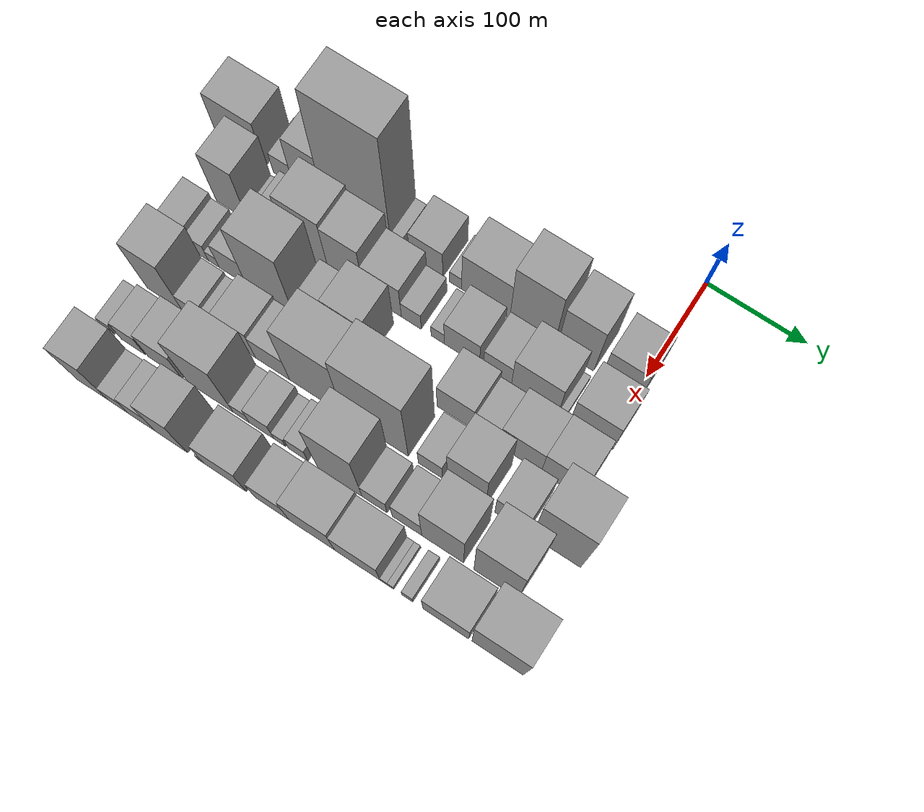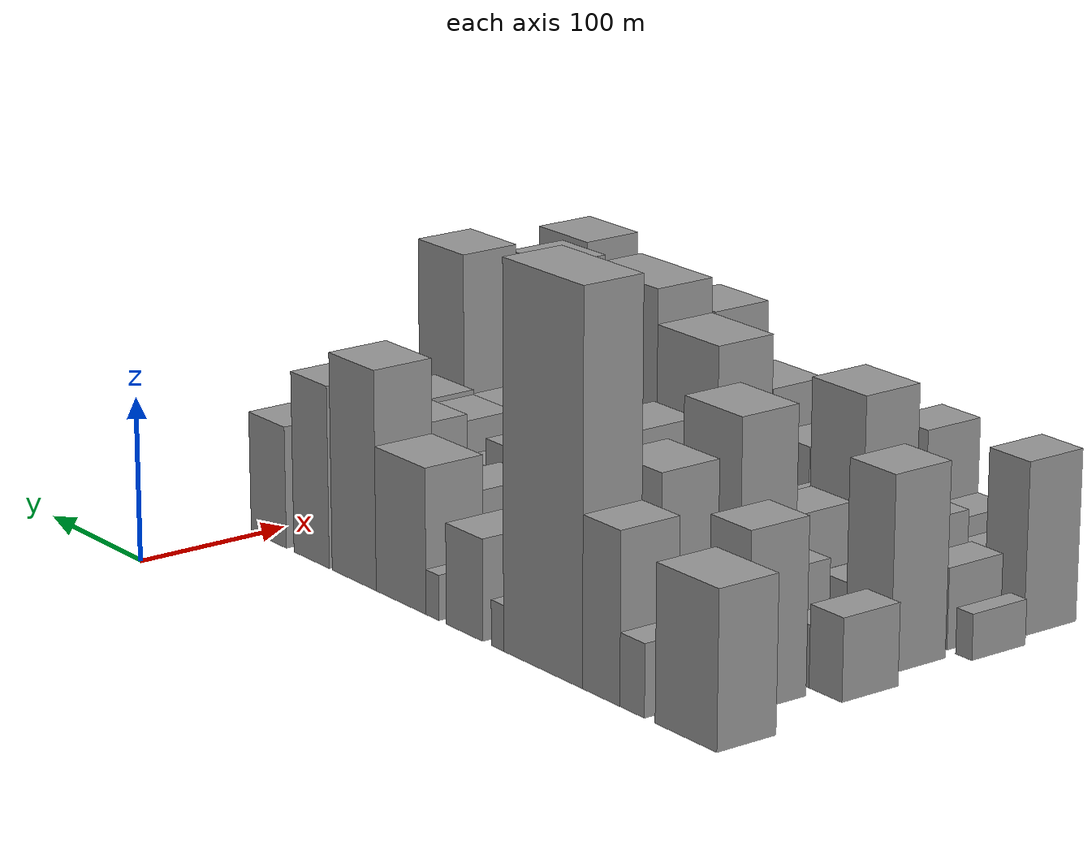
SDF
<sdf version="1.6">
 <world name="default">
  <model name="building_14">
   <static>1</static>
   <pose>100.0000 -406.3923 0 0.000000 0.000000 0.000000</pose>
   <link name="link">
    <pose>0 0 45.00 0 0 0</pose>
    <collision name="collision"><geometry><box><size>40.0000 51.0911 90.0000</size></box></geometry></collision>
    <visual name="visual">
     <cast_shadows>0</cast_shadows>
     <geometry><box><size>40.0000 51.0911 90.0000</size></box></geometry>
     <material>
      <script>
       <uri>model://grey_wall/materials/scripts</uri>
       <uri>model://grey_wall/materials/textures</uri>
       <name>vrc/grey_wall</name>
      </script>
     </material>
    </visual>
   </link>
  </model>
  <model name="building_15">
   <static>1</static>
   <pose>100.0000 -361.3320 0 0.000000 0.000000 0.000000</pose>
   <link name="link">
    <pose>0 0 21.00 0 0 0</pose>
    <collision name="collision"><geometry><box><size>40.0000 21.0296 42.0000</size></box></geometry></collision>
    <visual name="visual">
     <cast_shadows>0</cast_shadows>
     <geometry><box><size>40.0000 21.0296 42.0000</size></box></geometry>
     <material>
      <script>
       <uri>model://grey_wall/materials/scripts</uri>
       <uri>model://grey_wall/materials/textures</uri>
       <name>vrc/grey_wall</name>
      </script>
     </material>
    </visual>
   </link>
  </model>
  <model name="building_16">
   <static>1</static>
   <pose>100.0000 -334.5592 0 0.000000 0.000000 0.000000</pose>
   <link name="link">
    <pose>0 0 49.50 0 0 0</pose>
    <collision name="collision"><geometry><box><size>40.0000 32.5159 99.0000</size></box></geometry></collision>
    <visual name="visual">
     <cast_shadows>0</cast_shadows>
     <geometry><box><size>40.0000 32.5159 99.0000</size></box></geometry>
     <material>
      <script>
       <uri>model://grey_wall/materials/scripts</uri>
       <uri>model://grey_wall/materials/textures</uri>
       <name>vrc/grey_wall</name>
      </script>
     </material>
    </visual>
   </link>
  </model>
  <model name="building_17">
   <static>1</static>
   <pose>100.0000 -282.7788 0 0.000000 0.000000 0.000000</pose>
   <link name="link">
    <pose>0 0 112.50 0 0 0</pose>
    <collision name="collision"><geometry><box><size>40.0000 71.0450 225.0000</size></box></geometry></collision>
    <visual name="visual">
     <cast_shadows>0</cast_shadows>
     <geometry><box><size>40.0000 71.0450 225.0000</size></box></geometry>
     <material>
      <script>
       <uri>model://grey_wall/materials/scripts</uri>
       <uri>model://grey_wall/materials/textures</uri>
       <name>vrc/grey_wall</name>
      </script>
     </material>
    </visual>
   </link>
  </model>
  <model name="building_18">
   <static>1</static>
   <pose>100.0000 -241.5835 0 0.000000 0.000000 0.000000</pose>
   <link name="link">
    <pose>0 0 13.50 0 0 0</pose>
    <collision name="collision"><geometry><box><size>40.0000 11.3455 27.0000</size></box></geometry></collision>
    <visual name="visual">
     <cast_shadows>0</cast_shadows>
     <geometry><box><size>40.0000 11.3455 27.0000</size></box></geometry>
     <material>
      <script>
       <uri>model://grey_wall/materials/scripts</uri>
       <uri>model://grey_wall/materials/textures</uri>
       <name>vrc/grey_wall</name>
      </script>
     </material>
    </visual>
   </link>
  </model>
  <model name="building_19">
   <static>1</static>
   <pose>100.0000 -210.6910 0 0.000000 0.000000 0.000000</pose>
   <link name="link">
    <pose>0 0 30.00 0 0 0</pose>
    <collision name="collision"><geometry><box><size>40.0000 34.4396 60.0000</size></box></geometry></collision>
    <visual name="visual">
     <cast_shadows>0</cast_shadows>
     <geometry><box><size>40.0000 34.4396 60.0000</size></box></geometry>
     <material>
      <script>
       <uri>model://grey_wall/materials/scripts</uri>
       <uri>model://grey_wall/materials/textures</uri>
       <name>vrc/grey_wall</name>
      </script>
     </material>
    </visual>
   </link>
  </model>
  <model name="building_20">
   <static>1</static>
   <pose>100.0000 -180.2853 0 0.000000 0.000000 0.000000</pose>
   <link name="link">
    <pose>0 0 13.50 0 0 0</pose>
    <collision name="collision"><geometry><box><size>40.0000 12.3718 27.0000</size></box></geometry></collision>
    <visual name="visual">
     <cast_shadows>0</cast_shadows>
     <geometry><box><size>40.0000 12.3718 27.0000</size></box></geometry>
     <material>
      <script>
       <uri>model://grey_wall/materials/scripts</uri>
       <uri>model://grey_wall/materials/textures</uri>
       <name>vrc/grey_wall</name>
      </script>
     </material>
    </visual>
   </link>
  </model>
  <model name="building_21">
   <static>1</static>
   <pose>100.0000 -149.5675 0 0.000000 0.000000 0.000000</pose>
   <link name="link">
    <pose>0 0 43.50 0 0 0</pose>
    <collision name="collision"><geometry><box><size>40.0000 49.0637 87.0000</size></box></geometry></collision>
    <visual name="visual">
     <cast_shadows>0</cast_shadows>
     <geometry><box><size>40.0000 49.0637 87.0000</size></box></geometry>
     <material>
      <script>
       <uri>model://grey_wall/materials/scripts</uri>
       <uri>model://grey_wall/materials/textures</uri>
       <name>vrc/grey_wall</name>
      </script>
     </material>
    </visual>
   </link>
  </model>
  <model name="building_22">
   <static>1</static>
   <pose>100.0000 -102.7013 0 0.000000 0.000000 0.000000</pose>
   <link name="link">
    <pose>0 0 66.00 0 0 0</pose>
    <collision name="collision"><geometry><box><size>40.0000 44.6686 132.0000</size></box></geometry></collision>
    <visual name="visual">
     <cast_shadows>0</cast_shadows>
     <geometry><box><size>40.0000 44.6686 132.0000</size></box></geometry>
     <material>
      <script>
       <uri>model://grey_wall/materials/scripts</uri>
       <uri>model://grey_wall/materials/textures</uri>
       <name>vrc/grey_wall</name>
      </script>
     </material>
    </visual>
   </link>
  </model>
  <model name="building_23">
   <static>1</static>
   <pose>100.0000 -58.9814 0 0.000000 0.000000 0.000000</pose>
   <link name="link">
    <pose>0 0 55.50 0 0 0</pose>
    <collision name="collision"><geometry><box><size>40.0000 36.7712 111.0000</size></box></geometry></collision>
    <visual name="visual">
     <cast_shadows>0</cast_shadows>
     <geometry><box><size>40.0000 36.7712 111.0000</size></box></geometry>
     <material>
      <script>
       <uri>model://grey_wall/materials/scripts</uri>
       <uri>model://grey_wall/materials/textures</uri>
       <name>vrc/grey_wall</name>
      </script>
     </material>
    </visual>
   </link>
  </model>
  <model name="building_24">
   <static>1</static>
   <pose>100.0000 -13.7716 0 0.000000 0.000000 0.000000</pose>
   <link name="link">
    <pose>0 0 37.50 0 0 0</pose>
    <collision name="collision"><geometry><box><size>40.0000 37.6485 75.0000</size></box></geometry></collision>
    <visual name="visual">
     <cast_shadows>0</cast_shadows>
     <geometry><box><size>40.0000 37.6485 75.0000</size></box></geometry>
     <material>
      <script>
       <uri>model://grey_wall/materials/scripts</uri>
       <uri>model://grey_wall/materials/textures</uri>
       <name>vrc/grey_wall</name>
      </script>
     </material>
    </visual>
   </link>
  </model>
  <model name="building_57">
   <static>1</static>
   <pose>149.0000 -382.1029 0 0.000000 0.000000 0.000000</pose>
   <link name="link">
    <pose>0 0 51.00 0 0 0</pose>
    <collision name="collision"><geometry><box><size>40.0000 33.3554 102.0000</size></box></geometry></collision>
    <visual name="visual">
     <cast_shadows>0</cast_shadows>
     <geometry><box><size>40.0000 33.3554 102.0000</size></box></geometry>
     <material>
      <script>
       <uri>model://grey_wall/materials/scripts</uri>
       <uri>model://grey_wall/materials/textures</uri>
       <name>vrc/grey_wall</name>
      </script>
     </material>
    </visual>
   </link>
  </model>
  <model name="building_58">
   <static>1</static>
   <pose>149.0000 -360.3047 0 0.000000 0.000000 0.000000</pose>
   <link name="link">
    <pose>0 0 10.50 0 0 0</pose>
    <collision name="collision"><geometry><box><size>40.0000 10.2410 21.0000</size></box></geometry></collision>
    <visual name="visual">
     <cast_shadows>0</cast_shadows>
     <geometry><box><size>40.0000 10.2410 21.0000</size></box></geometry>
     <material>
      <script>
       <uri>model://grey_wall/materials/scripts</uri>
       <uri>model://grey_wall/materials/textures</uri>
       <name>vrc/grey_wall</name>
      </script>
     </material>
    </visual>
   </link>
  </model>
  <model name="building_59">
   <static>1</static>
   <pose>149.0000 -339.5528 0 0.000000 0.000000 0.000000</pose>
   <link name="link">
    <pose>0 0 24.00 0 0 0</pose>
    <collision name="collision"><geometry><box><size>40.0000 25.2629 48.0000</size></box></geometry></collision>
    <visual name="visual">
     <cast_shadows>0</cast_shadows>
     <geometry><box><size>40.0000 25.2629 48.0000</size></box></geometry>
     <material>
      <script>
       <uri>model://grey_wall/materials/scripts</uri>
       <uri>model://grey_wall/materials/textures</uri>
       <name>vrc/grey_wall</name>
      </script>
     </material>
    </visual>
   </link>
  </model>
  <model name="building_60">
   <static>1</static>
   <pose>149.0000 -301.4753 0 0.000000 0.000000 0.000000</pose>
   <link name="link">
    <pose>0 0 57.00 0 0 0</pose>
    <collision name="collision"><geometry><box><size>40.0000 44.8920 114.0000</size></box></geometry></collision>
    <visual name="visual">
     <cast_shadows>0</cast_shadows>
     <geometry><box><size>40.0000 44.8920 114.0000</size></box></geometry>
     <material>
      <script>
       <uri>model://grey_wall/materials/scripts</uri>
       <uri>model://grey_wall/materials/textures</uri>
       <name>vrc/grey_wall</name>
      </script>
     </material>
    </visual>
   </link>
  </model>
  <model name="building_61">
   <static>1</static>
   <pose>149.0000 -260.5300 0 0.000000 0.000000 0.000000</pose>
   <link name="link">
    <pose>0 0 52.50 0 0 0</pose>
    <collision name="collision"><geometry><box><size>40.0000 36.9986 105.0000</size></box></geometry></collision>
    <visual name="visual">
     <cast_shadows>0</cast_shadows>
     <geometry><box><size>40.0000 36.9986 105.0000</size></box></geometry>
     <material>
      <script>
       <uri>model://grey_wall/materials/scripts</uri>
       <uri>model://grey_wall/materials/textures</uri>
       <name>vrc/grey_wall</name>
      </script>
     </material>
    </visual>
   </link>
  </model>
  <model name="building_62">
   <static>1</static>
   <pose>149.0000 -222.8986 0 0.000000 0.000000 0.000000</pose>
   <link name="link">
    <pose>0 0 36.00 0 0 0</pose>
    <collision name="collision"><geometry><box><size>40.0000 38.2643 72.0000</size></box></geometry></collision>
    <visual name="visual">
     <cast_shadows>0</cast_shadows>
     <geometry><box><size>40.0000 38.2643 72.0000</size></box></geometry>
     <material>
      <script>
       <uri>model://grey_wall/materials/scripts</uri>
       <uri>model://grey_wall/materials/textures</uri>
       <name>vrc/grey_wall</name>
      </script>
     </material>
    </visual>
   </link>
  </model>
  <model name="building_63">
   <static>1</static>
   <pose>149.0000 -193.5696 0 0.000000 0.000000 0.000000</pose>
   <link name="link">
    <pose>0 0 19.50 0 0 0</pose>
    <collision name="collision"><geometry><box><size>40.0000 20.3938 39.0000</size></box></geometry></collision>
    <visual name="visual">
     <cast_shadows>0</cast_shadows>
     <geometry><box><size>40.0000 20.3938 39.0000</size></box></geometry>
     <material>
      <script>
       <uri>model://grey_wall/materials/scripts</uri>
       <uri>model://grey_wall/materials/textures</uri>
       <name>vrc/grey_wall</name>
      </script>
     </material>
    </visual>
   </link>
  </model>
  <model name="building_64">
   <static>1</static>
   <pose>149.0000 -166.6785 0 0.000000 0.000000 0.000000</pose>
   <link name="link">
    <pose>0 0 13.50 0 0 0</pose>
    <collision name="collision"><geometry><box><size>40.0000 13.3885 27.0000</size></box></geometry></collision>
    <visual name="visual">
     <cast_shadows>0</cast_shadows>
     <geometry><box><size>40.0000 13.3885 27.0000</size></box></geometry>
     <material>
      <script>
       <uri>model://grey_wall/materials/scripts</uri>
       <uri>model://grey_wall/materials/textures</uri>
       <name>vrc/grey_wall</name>
      </script>
     </material>
    </visual>
   </link>
  </model>
  <model name="building_65">
   <static>1</static>
   <pose>149.0000 -142.2231 0 0.000000 0.000000 0.000000</pose>
   <link name="link">
    <pose>0 0 30.00 0 0 0</pose>
    <collision name="collision"><geometry><box><size>40.0000 35.5222 60.0000</size></box></geometry></collision>
    <visual name="visual">
     <cast_shadows>0</cast_shadows>
     <geometry><box><size>40.0000 35.5222 60.0000</size></box></geometry>
     <material>
      <script>
       <uri>model://grey_wall/materials/scripts</uri>
       <uri>model://grey_wall/materials/textures</uri>
       <name>vrc/grey_wall</name>
      </script>
     </material>
    </visual>
   </link>
  </model>
  <model name="building_66">
   <static>1</static>
   <pose>149.0000 -106.3887 0 0.000000 0.000000 0.000000</pose>
   <link name="link">
    <pose>0 0 27.00 0 0 0</pose>
    <collision name="collision"><geometry><box><size>40.0000 28.1467 54.0000</size></box></geometry></collision>
    <visual name="visual">
     <cast_shadows>0</cast_shadows>
     <geometry><box><size>40.0000 28.1467 54.0000</size></box></geometry>
     <material>
      <script>
       <uri>model://grey_wall/materials/scripts</uri>
       <uri>model://grey_wall/materials/textures</uri>
       <name>vrc/grey_wall</name>
      </script>
     </material>
    </visual>
   </link>
  </model>
  <model name="building_67">
   <static>1</static>
   <pose>149.0000 -69.0412 0 0.000000 0.000000 0.000000</pose>
   <link name="link">
    <pose>0 0 40.50 0 0 0</pose>
    <collision name="collision"><geometry><box><size>40.0000 46.5482 81.0000</size></box></geometry></collision>
    <visual name="visual">
     <cast_shadows>0</cast_shadows>
     <geometry><box><size>40.0000 46.5482 81.0000</size></box></geometry>
     <material>
      <script>
       <uri>model://grey_wall/materials/scripts</uri>
       <uri>model://grey_wall/materials/textures</uri>
       <name>vrc/grey_wall</name>
      </script>
     </material>
    </visual>
   </link>
  </model>
  <model name="building_68">
   <static>1</static>
   <pose>149.0000 -42.4234 0 0.000000 0.000000 0.000000</pose>
   <link name="link">
    <pose>0 0 7.50 0 0 0</pose>
    <collision name="collision"><geometry><box><size>40.0000 6.6874 15.0000</size></box></geometry></collision>
    <visual name="visual">
     <cast_shadows>0</cast_shadows>
     <geometry><box><size>40.0000 6.6874 15.0000</size></box></geometry>
     <material>
      <script>
       <uri>model://grey_wall/materials/scripts</uri>
       <uri>model://grey_wall/materials/textures</uri>
       <name>vrc/grey_wall</name>
      </script>
     </material>
    </visual>
   </link>
  </model>
  <model name="building_69">
   <static>1</static>
   <pose>149.0000 -12.8317 0 0.000000 0.000000 0.000000</pose>
   <link name="link">
    <pose>0 0 37.50 0 0 0</pose>
    <collision name="collision"><geometry><box><size>40.0000 42.4959 75.0000</size></box></geometry></collision>
    <visual name="visual">
     <cast_shadows>0</cast_shadows>
     <geometry><box><size>40.0000 42.4959 75.0000</size></box></geometry>
     <material>
      <script>
       <uri>model://grey_wall/materials/scripts</uri>
       <uri>model://grey_wall/materials/textures</uri>
       <name>vrc/grey_wall</name>
      </script>
     </material>
    </visual>
   </link>
  </model>
  <model name="building_108">
   <static>1</static>
   <pose>198.0000 -404.2111 0 0.000000 0.000000 0.000000</pose>
   <link name="link">
    <pose>0 0 24.00 0 0 0</pose>
    <collision name="collision"><geometry><box><size>40.0000 26.8982 48.0000</size></box></geometry></collision>
    <visual name="visual">
     <cast_shadows>0</cast_shadows>
     <geometry><box><size>40.0000 26.8982 48.0000</size></box></geometry>
     <material>
      <script>
       <uri>model://grey_wall/materials/scripts</uri>
       <uri>model://grey_wall/materials/textures</uri>
       <name>vrc/grey_wall</name>
      </script>
     </material>
    </visual>
   </link>
  </model>
  <model name="building_109">
   <static>1</static>
   <pose>198.0000 -381.4071 0 0.000000 0.000000 0.000000</pose>
   <link name="link">
    <pose>0 0 18.00 0 0 0</pose>
    <collision name="collision"><geometry><box><size>40.0000 18.7098 36.0000</size></box></geometry></collision>
    <visual name="visual">
     <cast_shadows>0</cast_shadows>
     <geometry><box><size>40.0000 18.7098 36.0000</size></box></geometry>
     <material>
      <script>
       <uri>model://grey_wall/materials/scripts</uri>
       <uri>model://grey_wall/materials/textures</uri>
       <name>vrc/grey_wall</name>
      </script>
     </material>
    </visual>
   </link>
  </model>
  <model name="building_110">
   <static>1</static>
   <pose>198.0000 -366.3024 0 0.000000 0.000000 0.000000</pose>
   <link name="link">
    <pose>0 0 12.00 0 0 0</pose>
    <collision name="collision"><geometry><box><size>40.0000 11.4996 24.0000</size></box></geometry></collision>
    <visual name="visual">
     <cast_shadows>0</cast_shadows>
     <geometry><box><size>40.0000 11.4996 24.0000</size></box></geometry>
     <material>
      <script>
       <uri>model://grey_wall/materials/scripts</uri>
       <uri>model://grey_wall/materials/textures</uri>
       <name>vrc/grey_wall</name>
      </script>
     </material>
    </visual>
   </link>
  </model>
  <model name="building_111">
   <static>1</static>
   <pose>198.0000 -346.1902 0 0.000000 0.000000 0.000000</pose>
   <link name="link">
    <pose>0 0 28.50 0 0 0</pose>
    <collision name="collision"><geometry><box><size>40.0000 28.7248 57.0000</size></box></geometry></collision>
    <visual name="visual">
     <cast_shadows>0</cast_shadows>
     <geometry><box><size>40.0000 28.7248 57.0000</size></box></geometry>
     <material>
      <script>
       <uri>model://grey_wall/materials/scripts</uri>
       <uri>model://grey_wall/materials/textures</uri>
       <name>vrc/grey_wall</name>
      </script>
     </material>
    </visual>
   </link>
  </model>
  <model name="building_112">
   <static>1</static>
   <pose>198.0000 -306.9564 0 0.000000 0.000000 0.000000</pose>
   <link name="link">
    <pose>0 0 69.00 0 0 0</pose>
    <collision name="collision"><geometry><box><size>40.0000 49.7427 138.0000</size></box></geometry></collision>
    <visual name="visual">
     <cast_shadows>0</cast_shadows>
     <geometry><box><size>40.0000 49.7427 138.0000</size></box></geometry>
     <material>
      <script>
       <uri>model://grey_wall/materials/scripts</uri>
       <uri>model://grey_wall/materials/textures</uri>
       <name>vrc/grey_wall</name>
      </script>
     </material>
    </visual>
   </link>
  </model>
  <model name="building_113">
   <static>1</static>
   <pose>198.0000 -278.9943 0 0.000000 0.000000 0.000000</pose>
   <link name="link">
    <pose>0 0 7.50 0 0 0</pose>
    <collision name="collision"><geometry><box><size>40.0000 6.1815 15.0000</size></box></geometry></collision>
    <visual name="visual">
     <cast_shadows>0</cast_shadows>
     <geometry><box><size>40.0000 6.1815 15.0000</size></box></geometry>
     <material>
      <script>
       <uri>model://grey_wall/materials/scripts</uri>
       <uri>model://grey_wall/materials/textures</uri>
       <name>vrc/grey_wall</name>
      </script>
     </material>
    </visual>
   </link>
  </model>
  <model name="building_114">
   <static>1</static>
   <pose>198.0000 -260.1103 0 0.000000 0.000000 0.000000</pose>
   <link name="link">
    <pose>0 0 30.00 0 0 0</pose>
    <collision name="collision"><geometry><box><size>40.0000 31.5867 60.0000</size></box></geometry></collision>
    <visual name="visual">
     <cast_shadows>0</cast_shadows>
     <geometry><box><size>40.0000 31.5867 60.0000</size></box></geometry>
     <material>
      <script>
       <uri>model://grey_wall/materials/scripts</uri>
       <uri>model://grey_wall/materials/textures</uri>
       <name>vrc/grey_wall</name>
      </script>
     </material>
    </visual>
   </link>
  </model>
  <model name="building_115">
   <static>1</static>
   <pose>198.0000 -225.0217 0 0.000000 0.000000 0.000000</pose>
   <link name="link">
    <pose>0 0 54.00 0 0 0</pose>
    <collision name="collision"><geometry><box><size>40.0000 38.5906 108.0000</size></box></geometry></collision>
    <visual name="visual">
     <cast_shadows>0</cast_shadows>
     <geometry><box><size>40.0000 38.5906 108.0000</size></box></geometry>
     <material>
      <script>
       <uri>model://grey_wall/materials/scripts</uri>
       <uri>model://grey_wall/materials/textures</uri>
       <name>vrc/grey_wall</name>
      </script>
     </material>
    </visual>
   </link>
  </model>
  <model name="building_116">
   <static>1</static>
   <pose>198.0000 -116.7521 0 0.000000 0.000000 0.000000</pose>
   <link name="link">
    <pose>0 0 33.00 0 0 0</pose>
    <collision name="collision"><geometry><box><size>40.0000 36.6496 66.0000</size></box></geometry></collision>
    <visual name="visual">
     <cast_shadows>0</cast_shadows>
     <geometry><box><size>40.0000 36.6496 66.0000</size></box></geometry>
     <material>
      <script>
       <uri>model://grey_wall/materials/scripts</uri>
       <uri>model://grey_wall/materials/textures</uri>
       <name>vrc/grey_wall</name>
      </script>
     </material>
    </visual>
   </link>
  </model>
  <model name="building_117">
   <static>1</static>
   <pose>198.0000 -85.3803 0 0.000000 0.000000 0.000000</pose>
   <link name="link">
    <pose>0 0 24.00 0 0 0</pose>
    <collision name="collision"><geometry><box><size>40.0000 26.0939 48.0000</size></box></geometry></collision>
    <visual name="visual">
     <cast_shadows>0</cast_shadows>
     <geometry><box><size>40.0000 26.0939 48.0000</size></box></geometry>
     <material>
      <script>
       <uri>model://grey_wall/materials/scripts</uri>
       <uri>model://grey_wall/materials/textures</uri>
       <name>vrc/grey_wall</name>
      </script>
     </material>
    </visual>
   </link>
  </model>
  <model name="building_118">
   <static>1</static>
   <pose>198.0000 -51.9187 0 0.000000 0.000000 0.000000</pose>
   <link name="link">
    <pose>0 0 34.50 0 0 0</pose>
    <collision name="collision"><geometry><box><size>40.0000 40.8294 69.0000</size></box></geometry></collision>
    <visual name="visual">
     <cast_shadows>0</cast_shadows>
     <geometry><box><size>40.0000 40.8294 69.0000</size></box></geometry>
     <material>
      <script>
       <uri>model://grey_wall/materials/scripts</uri>
       <uri>model://grey_wall/materials/textures</uri>
       <name>vrc/grey_wall</name>
      </script>
     </material>
    </visual>
   </link>
  </model>
  <model name="building_119">
   <static>1</static>
   <pose>198.0000 -11.8491 0 0.000000 0.000000 0.000000</pose>
   <link name="link">
    <pose>0 0 36.00 0 0 0</pose>
    <collision name="collision"><geometry><box><size>40.0000 39.3098 72.0000</size></box></geometry></collision>
    <visual name="visual">
     <cast_shadows>0</cast_shadows>
     <geometry><box><size>40.0000 39.3098 72.0000</size></box></geometry>
     <material>
      <script>
       <uri>model://grey_wall/materials/scripts</uri>
       <uri>model://grey_wall/materials/textures</uri>
       <name>vrc/grey_wall</name>
      </script>
     </material>
    </visual>
   </link>
  </model>
  <model name="building_161">
   <static>1</static>
   <pose>247.0000 -382.9924 0 0.000000 0.000000 0.000000</pose>
   <link name="link">
    <pose>0 0 57.00 0 0 0</pose>
    <collision name="collision"><geometry><box><size>40.0000 37.2555 114.0000</size></box></geometry></collision>
    <visual name="visual">
     <cast_shadows>0</cast_shadows>
     <geometry><box><size>40.0000 37.2555 114.0000</size></box></geometry>
     <material>
      <script>
       <uri>model://grey_wall/materials/scripts</uri>
       <uri>model://grey_wall/materials/textures</uri>
       <name>vrc/grey_wall</name>
      </script>
     </material>
    </visual>
   </link>
  </model>
  <model name="building_162">
   <static>1</static>
   <pose>247.0000 -352.8262 0 0.000000 0.000000 0.000000</pose>
   <link name="link">
    <pose>0 0 21.00 0 0 0</pose>
    <collision name="collision"><geometry><box><size>40.0000 23.0768 42.0000</size></box></geometry></collision>
    <visual name="visual">
     <cast_shadows>0</cast_shadows>
     <geometry><box><size>40.0000 23.0768 42.0000</size></box></geometry>
     <material>
      <script>
       <uri>model://grey_wall/materials/scripts</uri>
       <uri>model://grey_wall/materials/textures</uri>
       <name>vrc/grey_wall</name>
      </script>
     </material>
    </visual>
   </link>
  </model>
  <model name="building_163">
   <static>1</static>
   <pose>247.0000 -331.6278 0 0.000000 0.000000 0.000000</pose>
   <link name="link">
    <pose>0 0 16.50 0 0 0</pose>
    <collision name="collision"><geometry><box><size>40.0000 19.3199 33.0000</size></box></geometry></collision>
    <visual name="visual">
     <cast_shadows>0</cast_shadows>
     <geometry><box><size>40.0000 19.3199 33.0000</size></box></geometry>
     <material>
      <script>
       <uri>model://grey_wall/materials/scripts</uri>
       <uri>model://grey_wall/materials/textures</uri>
       <name>vrc/grey_wall</name>
      </script>
     </material>
    </visual>
   </link>
  </model>
  <model name="building_164">
   <static>1</static>
   <pose>247.0000 -304.6740 0 0.000000 0.000000 0.000000</pose>
   <link name="link">
    <pose>0 0 34.50 0 0 0</pose>
    <collision name="collision"><geometry><box><size>40.0000 34.5878 69.0000</size></box></geometry></collision>
    <visual name="visual">
     <cast_shadows>0</cast_shadows>
     <geometry><box><size>40.0000 34.5878 69.0000</size></box></geometry>
     <material>
      <script>
       <uri>model://grey_wall/materials/scripts</uri>
       <uri>model://grey_wall/materials/textures</uri>
       <name>vrc/grey_wall</name>
      </script>
     </material>
    </visual>
   </link>
  </model>
  <model name="building_165">
   <static>1</static>
   <pose>247.0000 -269.6949 0 0.000000 0.000000 0.000000</pose>
   <link name="link">
    <pose>0 0 30.00 0 0 0</pose>
    <collision name="collision"><geometry><box><size>40.0000 35.3703 60.0000</size></box></geometry></collision>
    <visual name="visual">
     <cast_shadows>0</cast_shadows>
     <geometry><box><size>40.0000 35.3703 60.0000</size></box></geometry>
     <material>
      <script>
       <uri>model://grey_wall/materials/scripts</uri>
       <uri>model://grey_wall/materials/textures</uri>
       <name>vrc/grey_wall</name>
      </script>
     </material>
    </visual>
   </link>
  </model>
  <model name="building_166">
   <static>1</static>
   <pose>247.0000 -224.6699 0 0.000000 0.000000 0.000000</pose>
   <link name="link">
    <pose>0 0 75.00 0 0 0</pose>
    <collision name="collision"><geometry><box><size>40.0000 54.6799 150.0000</size></box></geometry></collision>
    <visual name="visual">
     <cast_shadows>0</cast_shadows>
     <geometry><box><size>40.0000 54.6799 150.0000</size></box></geometry>
     <material>
      <script>
       <uri>model://grey_wall/materials/scripts</uri>
       <uri>model://grey_wall/materials/textures</uri>
       <name>vrc/grey_wall</name>
      </script>
     </material>
    </visual>
   </link>
  </model>
  <model name="building_167">
   <static>1</static>
   <pose>247.0000 -164.4847 0 0.000000 0.000000 0.000000</pose>
   <link name="link">
    <pose>0 0 85.50 0 0 0</pose>
    <collision name="collision"><geometry><box><size>40.0000 65.6905 171.0000</size></box></geometry></collision>
    <visual name="visual">
     <cast_shadows>0</cast_shadows>
     <geometry><box><size>40.0000 65.6905 171.0000</size></box></geometry>
     <material>
      <script>
       <uri>model://grey_wall/materials/scripts</uri>
       <uri>model://grey_wall/materials/textures</uri>
       <name>vrc/grey_wall</name>
      </script>
     </material>
    </visual>
   </link>
  </model>
  <model name="building_168">
   <static>1</static>
   <pose>247.0000 -109.7556 0 0.000000 0.000000 0.000000</pose>
   <link name="link">
    <pose>0 0 22.50 0 0 0</pose>
    <collision name="collision"><geometry><box><size>40.0000 23.7678 45.0000</size></box></geometry></collision>
    <visual name="visual">
     <cast_shadows>0</cast_shadows>
     <geometry><box><size>40.0000 23.7678 45.0000</size></box></geometry>
     <material>
      <script>
       <uri>model://grey_wall/materials/scripts</uri>
       <uri>model://grey_wall/materials/textures</uri>
       <name>vrc/grey_wall</name>
      </script>
     </material>
    </visual>
   </link>
  </model>
  <model name="building_169">
   <static>1</static>
   <pose>247.0000 -73.9594 0 0.000000 0.000000 0.000000</pose>
   <link name="link">
    <pose>0 0 55.50 0 0 0</pose>
    <collision name="collision"><geometry><box><size>40.0000 37.8246 111.0000</size></box></geometry></collision>
    <visual name="visual">
     <cast_shadows>0</cast_shadows>
     <geometry><box><size>40.0000 37.8246 111.0000</size></box></geometry>
     <material>
      <script>
       <uri>model://grey_wall/materials/scripts</uri>
       <uri>model://grey_wall/materials/textures</uri>
       <name>vrc/grey_wall</name>
      </script>
     </material>
    </visual>
   </link>
  </model>
  <model name="building_170">
   <static>1</static>
   <pose>247.0000 -30.2576 0 0.000000 0.000000 0.000000</pose>
   <link name="link">
    <pose>0 0 31.50 0 0 0</pose>
    <collision name="collision"><geometry><box><size>40.0000 31.5790 63.0000</size></box></geometry></collision>
    <visual name="visual">
     <cast_shadows>0</cast_shadows>
     <geometry><box><size>40.0000 31.5790 63.0000</size></box></geometry>
     <material>
      <script>
       <uri>model://grey_wall/materials/scripts</uri>
       <uri>model://grey_wall/materials/textures</uri>
       <name>vrc/grey_wall</name>
      </script>
     </material>
    </visual>
   </link>
  </model>
  <model name="building_171">
   <static>1</static>
   <pose>247.0000 13.9634 0 0.000000 0.000000 0.000000</pose>
   <link name="link">
    <pose>0 0 75.00 0 0 0</pose>
    <collision name="collision"><geometry><box><size>40.0000 46.8631 150.0000</size></box></geometry></collision>
    <visual name="visual">
     <cast_shadows>0</cast_shadows>
     <geometry><box><size>40.0000 46.8631 150.0000</size></box></geometry>
     <material>
      <script>
       <uri>model://grey_wall/materials/scripts</uri>
       <uri>model://grey_wall/materials/textures</uri>
       <name>vrc/grey_wall</name>
      </script>
     </material>
    </visual>
   </link>
  </model>
  <model name="building_208">
   <static>1</static>
   <pose>296.0000 -406.7117 0 0.000000 0.000000 0.000000</pose>
   <link name="link">
    <pose>0 0 13.50 0 0 0</pose>
    <collision name="collision"><geometry><box><size>40.0000 13.0756 27.0000</size></box></geometry></collision>
    <visual name="visual">
     <cast_shadows>0</cast_shadows>
     <geometry><box><size>40.0000 13.0756 27.0000</size></box></geometry>
     <material>
      <script>
       <uri>model://grey_wall/materials/scripts</uri>
       <uri>model://grey_wall/materials/textures</uri>
       <name>vrc/grey_wall</name>
      </script>
     </material>
    </visual>
   </link>
  </model>
  <model name="building_209">
   <static>1</static>
   <pose>296.0000 -380.4439 0 0.000000 0.000000 0.000000</pose>
   <link name="link">
    <pose>0 0 24.00 0 0 0</pose>
    <collision name="collision"><geometry><box><size>40.0000 25.4599 48.0000</size></box></geometry></collision>
    <visual name="visual">
     <cast_shadows>0</cast_shadows>
     <geometry><box><size>40.0000 25.4599 48.0000</size></box></geometry>
     <material>
      <script>
       <uri>model://grey_wall/materials/scripts</uri>
       <uri>model://grey_wall/materials/textures</uri>
       <name>vrc/grey_wall</name>
      </script>
     </material>
    </visual>
   </link>
  </model>
  <model name="building_210">
   <static>1</static>
   <pose>296.0000 -346.7444 0 0.000000 0.000000 0.000000</pose>
   <link name="link">
    <pose>0 0 33.00 0 0 0</pose>
    <collision name="collision"><geometry><box><size>40.0000 35.9390 66.0000</size></box></geometry></collision>
    <visual name="visual">
     <cast_shadows>0</cast_shadows>
     <geometry><box><size>40.0000 35.9390 66.0000</size></box></geometry>
     <material>
      <script>
       <uri>model://grey_wall/materials/scripts</uri>
       <uri>model://grey_wall/materials/textures</uri>
       <name>vrc/grey_wall</name>
      </script>
     </material>
    </visual>
   </link>
  </model>
  <model name="building_211">
   <static>1</static>
   <pose>296.0000 -298.7966 0 0.000000 0.000000 0.000000</pose>
   <link name="link">
    <pose>0 0 64.50 0 0 0</pose>
    <collision name="collision"><geometry><box><size>40.0000 45.9568 129.0000</size></box></geometry></collision>
    <visual name="visual">
     <cast_shadows>0</cast_shadows>
     <geometry><box><size>40.0000 45.9568 129.0000</size></box></geometry>
     <material>
      <script>
       <uri>model://grey_wall/materials/scripts</uri>
       <uri>model://grey_wall/materials/textures</uri>
       <name>vrc/grey_wall</name>
      </script>
     </material>
    </visual>
   </link>
  </model>
  <model name="building_212">
   <static>1</static>
   <pose>296.0000 -267.4237 0 0.000000 0.000000 0.000000</pose>
   <link name="link">
    <pose>0 0 15.00 0 0 0</pose>
    <collision name="collision"><geometry><box><size>40.0000 16.7889 30.0000</size></box></geometry></collision>
    <visual name="visual">
     <cast_shadows>0</cast_shadows>
     <geometry><box><size>40.0000 16.7889 30.0000</size></box></geometry>
     <material>
      <script>
       <uri>model://grey_wall/materials/scripts</uri>
       <uri>model://grey_wall/materials/textures</uri>
       <name>vrc/grey_wall</name>
      </script>
     </material>
    </visual>
   </link>
  </model>
  <model name="building_213">
   <static>1</static>
   <pose>296.0000 -246.5369 0 0.000000 0.000000 0.000000</pose>
   <link name="link">
    <pose>0 0 24.00 0 0 0</pose>
    <collision name="collision"><geometry><box><size>40.0000 24.9847 48.0000</size></box></geometry></collision>
    <visual name="visual">
     <cast_shadows>0</cast_shadows>
     <geometry><box><size>40.0000 24.9847 48.0000</size></box></geometry>
     <material>
      <script>
       <uri>model://grey_wall/materials/scripts</uri>
       <uri>model://grey_wall/materials/textures</uri>
       <name>vrc/grey_wall</name>
      </script>
     </material>
    </visual>
   </link>
  </model>
  <model name="building_214">
   <static>1</static>
   <pose>296.0000 -228.1272 0 0.000000 0.000000 0.000000</pose>
   <link name="link">
    <pose>0 0 12.00 0 0 0</pose>
    <collision name="collision"><geometry><box><size>40.0000 11.8349 24.0000</size></box></geometry></collision>
    <visual name="visual">
     <cast_shadows>0</cast_shadows>
     <geometry><box><size>40.0000 11.8349 24.0000</size></box></geometry>
     <material>
      <script>
       <uri>model://grey_wall/materials/scripts</uri>
       <uri>model://grey_wall/materials/textures</uri>
       <name>vrc/grey_wall</name>
      </script>
     </material>
    </visual>
   </link>
  </model>
  <model name="building_215">
   <static>1</static>
   <pose>296.0000 -209.3689 0 0.000000 0.000000 0.000000</pose>
   <link name="link">
    <pose>0 0 19.50 0 0 0</pose>
    <collision name="collision"><geometry><box><size>40.0000 19.6816 39.0000</size></box></geometry></collision>
    <visual name="visual">
     <cast_shadows>0</cast_shadows>
     <geometry><box><size>40.0000 19.6816 39.0000</size></box></geometry>
     <material>
      <script>
       <uri>model://grey_wall/materials/scripts</uri>
       <uri>model://grey_wall/materials/textures</uri>
       <name>vrc/grey_wall</name>
      </script>
     </material>
    </visual>
   </link>
  </model>
  <model name="building_216">
   <static>1</static>
   <pose>296.0000 -167.2701 0 0.000000 0.000000 0.000000</pose>
   <link name="link">
    <pose>0 0 73.50 0 0 0</pose>
    <collision name="collision"><geometry><box><size>40.0000 44.5161 147.0000</size></box></geometry></collision>
    <visual name="visual">
     <cast_shadows>0</cast_shadows>
     <geometry><box><size>40.0000 44.5161 147.0000</size></box></geometry>
     <material>
      <script>
       <uri>model://grey_wall/materials/scripts</uri>
       <uri>model://grey_wall/materials/textures</uri>
       <name>vrc/grey_wall</name>
      </script>
     </material>
    </visual>
   </link>
  </model>
  <model name="building_217">
   <static>1</static>
   <pose>296.0000 -132.5290 0 0.000000 0.000000 0.000000</pose>
   <link name="link">
    <pose>0 0 22.50 0 0 0</pose>
    <collision name="collision"><geometry><box><size>40.0000 24.9660 45.0000</size></box></geometry></collision>
    <visual name="visual">
     <cast_shadows>0</cast_shadows>
     <geometry><box><size>40.0000 24.9660 45.0000</size></box></geometry>
     <material>
      <script>
       <uri>model://grey_wall/materials/scripts</uri>
       <uri>model://grey_wall/materials/textures</uri>
       <name>vrc/grey_wall</name>
      </script>
     </material>
    </visual>
   </link>
  </model>
  <model name="building_218">
   <static>1</static>
   <pose>296.0000 -100.4131 0 0.000000 0.000000 0.000000</pose>
   <link name="link">
    <pose>0 0 25.50 0 0 0</pose>
    <collision name="collision"><geometry><box><size>40.0000 29.2658 51.0000</size></box></geometry></collision>
    <visual name="visual">
     <cast_shadows>0</cast_shadows>
     <geometry><box><size>40.0000 29.2658 51.0000</size></box></geometry>
     <material>
      <script>
       <uri>model://grey_wall/materials/scripts</uri>
       <uri>model://grey_wall/materials/textures</uri>
       <name>vrc/grey_wall</name>
      </script>
     </material>
    </visual>
   </link>
  </model>
  <model name="building_219">
   <static>1</static>
   <pose>296.0000 -65.3778 0 0.000000 0.000000 0.000000</pose>
   <link name="link">
    <pose>0 0 60.00 0 0 0</pose>
    <collision name="collision"><geometry><box><size>40.0000 40.8048 120.0000</size></box></geometry></collision>
    <visual name="visual">
     <cast_shadows>0</cast_shadows>
     <geometry><box><size>40.0000 40.8048 120.0000</size></box></geometry>
     <material>
      <script>
       <uri>model://grey_wall/materials/scripts</uri>
       <uri>model://grey_wall/materials/textures</uri>
       <name>vrc/grey_wall</name>
      </script>
     </material>
    </visual>
   </link>
  </model>
  <model name="building_220">
   <static>1</static>
   <pose>296.0000 -13.3894 0 0.000000 0.000000 0.000000</pose>
   <link name="link">
    <pose>0 0 70.50 0 0 0</pose>
    <collision name="collision"><geometry><box><size>40.0000 43.1721 141.0000</size></box></geometry></collision>
    <visual name="visual">
     <cast_shadows>0</cast_shadows>
     <geometry><box><size>40.0000 43.1721 141.0000</size></box></geometry>
     <material>
      <script>
       <uri>model://grey_wall/materials/scripts</uri>
       <uri>model://grey_wall/materials/textures</uri>
       <name>vrc/grey_wall</name>
      </script>
     </material>
    </visual>
   </link>
  </model>
  <model name="building_260">
   <static>1</static>
   <pose>345.0000 -386.3586 0 0.000000 0.000000 0.000000</pose>
   <link name="link">
    <pose>0 0 51.00 0 0 0</pose>
    <collision name="collision"><geometry><box><size>40.0000 32.4948 102.0000</size></box></geometry></collision>
    <visual name="visual">
     <cast_shadows>0</cast_shadows>
     <geometry><box><size>40.0000 32.4948 102.0000</size></box></geometry>
     <material>
      <script>
       <uri>model://grey_wall/materials/scripts</uri>
       <uri>model://grey_wall/materials/textures</uri>
       <name>vrc/grey_wall</name>
      </script>
     </material>
    </visual>
   </link>
  </model>
  <model name="building_261">
   <static>1</static>
   <pose>345.0000 -359.3277 0 0.000000 0.000000 0.000000</pose>
   <link name="link">
    <pose>0 0 21.00 0 0 0</pose>
    <collision name="collision"><geometry><box><size>40.0000 21.5670 42.0000</size></box></geometry></collision>
    <visual name="visual">
     <cast_shadows>0</cast_shadows>
     <geometry><box><size>40.0000 21.5670 42.0000</size></box></geometry>
     <material>
      <script>
       <uri>model://grey_wall/materials/scripts</uri>
       <uri>model://grey_wall/materials/textures</uri>
       <name>vrc/grey_wall</name>
      </script>
     </material>
    </visual>
   </link>
  </model>
  <model name="building_262">
   <static>1</static>
   <pose>345.0000 -334.1555 0 0.000000 0.000000 0.000000</pose>
   <link name="link">
    <pose>0 0 27.00 0 0 0</pose>
    <collision name="collision"><geometry><box><size>40.0000 28.7774 54.0000</size></box></geometry></collision>
    <visual name="visual">
     <cast_shadows>0</cast_shadows>
     <geometry><box><size>40.0000 28.7774 54.0000</size></box></geometry>
     <material>
      <script>
       <uri>model://grey_wall/materials/scripts</uri>
       <uri>model://grey_wall/materials/textures</uri>
       <name>vrc/grey_wall</name>
      </script>
     </material>
    </visual>
   </link>
  </model>
  <model name="building_263">
   <static>1</static>
   <pose>345.0000 -303.6249 0 0.000000 0.000000 0.000000</pose>
   <link name="link">
    <pose>0 0 49.50 0 0 0</pose>
    <collision name="collision"><geometry><box><size>40.0000 32.2837 99.0000</size></box></geometry></collision>
    <visual name="visual">
     <cast_shadows>0</cast_shadows>
     <geometry><box><size>40.0000 32.2837 99.0000</size></box></geometry>
     <material>
      <script>
       <uri>model://grey_wall/materials/scripts</uri>
       <uri>model://grey_wall/materials/textures</uri>
       <name>vrc/grey_wall</name>
      </script>
     </material>
    </visual>
   </link>
  </model>
  <model name="building_264">
   <static>1</static>
   <pose>345.0000 -273.7482 0 0.000000 0.000000 0.000000</pose>
   <link name="link">
    <pose>0 0 9.00 0 0 0</pose>
    <collision name="collision"><geometry><box><size>40.0000 7.4699 18.0000</size></box></geometry></collision>
    <visual name="visual">
     <cast_shadows>0</cast_shadows>
     <geometry><box><size>40.0000 7.4699 18.0000</size></box></geometry>
     <material>
      <script>
       <uri>model://grey_wall/materials/scripts</uri>
       <uri>model://grey_wall/materials/textures</uri>
       <name>vrc/grey_wall</name>
      </script>
     </material>
    </visual>
   </link>
  </model>
  <model name="building_265">
   <static>1</static>
   <pose>345.0000 -248.7898 0 0.000000 0.000000 0.000000</pose>
   <link name="link">
    <pose>0 0 37.50 0 0 0</pose>
    <collision name="collision"><geometry><box><size>40.0000 42.4468 75.0000</size></box></geometry></collision>
    <visual name="visual">
     <cast_shadows>0</cast_shadows>
     <geometry><box><size>40.0000 42.4468 75.0000</size></box></geometry>
     <material>
      <script>
       <uri>model://grey_wall/materials/scripts</uri>
       <uri>model://grey_wall/materials/textures</uri>
       <name>vrc/grey_wall</name>
      </script>
     </material>
    </visual>
   </link>
  </model>
  <model name="building_266">
   <static>1</static>
   <pose>345.0000 -201.5249 0 0.000000 0.000000 0.000000</pose>
   <link name="link">
    <pose>0 0 31.50 0 0 0</pose>
    <collision name="collision"><geometry><box><size>40.0000 34.0830 63.0000</size></box></geometry></collision>
    <visual name="visual">
     <cast_shadows>0</cast_shadows>
     <geometry><box><size>40.0000 34.0830 63.0000</size></box></geometry>
     <material>
      <script>
       <uri>model://grey_wall/materials/scripts</uri>
       <uri>model://grey_wall/materials/textures</uri>
       <name>vrc/grey_wall</name>
      </script>
     </material>
    </visual>
   </link>
  </model>
  <model name="building_267">
   <static>1</static>
   <pose>345.0000 -161.5569 0 0.000000 0.000000 0.000000</pose>
   <link name="link">
    <pose>0 0 45.00 0 0 0</pose>
    <collision name="collision"><geometry><box><size>40.0000 45.8530 90.0000</size></box></geometry></collision>
    <visual name="visual">
     <cast_shadows>0</cast_shadows>
     <geometry><box><size>40.0000 45.8530 90.0000</size></box></geometry>
     <material>
      <script>
       <uri>model://grey_wall/materials/scripts</uri>
       <uri>model://grey_wall/materials/textures</uri>
       <name>vrc/grey_wall</name>
      </script>
     </material>
    </visual>
   </link>
  </model>
  <model name="building_268">
   <static>1</static>
   <pose>345.0000 -116.3390 0 0.000000 0.000000 0.000000</pose>
   <link name="link">
    <pose>0 0 37.50 0 0 0</pose>
    <collision name="collision"><geometry><box><size>40.0000 44.5828 75.0000</size></box></geometry></collision>
    <visual name="visual">
     <cast_shadows>0</cast_shadows>
     <geometry><box><size>40.0000 44.5828 75.0000</size></box></geometry>
     <material>
      <script>
       <uri>model://grey_wall/materials/scripts</uri>
       <uri>model://grey_wall/materials/textures</uri>
       <name>vrc/grey_wall</name>
      </script>
     </material>
    </visual>
   </link>
  </model>
  <model name="building_269">
   <static>1</static>
   <pose>345.0000 -90.4341 0 0.000000 0.000000 0.000000</pose>
   <link name="link">
    <pose>0 0 7.50 0 0 0</pose>
    <collision name="collision"><geometry><box><size>40.0000 7.2270 15.0000</size></box></geometry></collision>
    <visual name="visual">
     <cast_shadows>0</cast_shadows>
     <geometry><box><size>40.0000 7.2270 15.0000</size></box></geometry>
     <material>
      <script>
       <uri>model://grey_wall/materials/scripts</uri>
       <uri>model://grey_wall/materials/textures</uri>
       <name>vrc/grey_wall</name>
      </script>
     </material>
    </visual>
   </link>
  </model>
  <model name="building_270">
   <static>1</static>
   <pose>345.0000 -83.7921 0 0.000000 0.000000 0.000000</pose>
   <link name="link">
    <pose>0 0 7.50 0 0 0</pose>
    <collision name="collision"><geometry><box><size>40.0000 6.0569 15.0000</size></box></geometry></collision>
    <visual name="visual">
     <cast_shadows>0</cast_shadows>
     <geometry><box><size>40.0000 6.0569 15.0000</size></box></geometry>
     <material>
      <script>
       <uri>model://grey_wall/materials/scripts</uri>
       <uri>model://grey_wall/materials/textures</uri>
       <name>vrc/grey_wall</name>
      </script>
     </material>
    </visual>
   </link>
  </model>
  <model name="building_271">
   <static>1</static>
   <pose>345.0000 -67.4701 0 0.000000 0.000000 0.000000</pose>
   <link name="link">
    <pose>0 0 12.00 0 0 0</pose>
    <collision name="collision"><geometry><box><size>40.0000 10.5871 24.0000</size></box></geometry></collision>
    <visual name="visual">
     <cast_shadows>0</cast_shadows>
     <geometry><box><size>40.0000 10.5871 24.0000</size></box></geometry>
     <material>
      <script>
       <uri>model://grey_wall/materials/scripts</uri>
       <uri>model://grey_wall/materials/textures</uri>
       <name>vrc/grey_wall</name>
      </script>
     </material>
    </visual>
   </link>
  </model>
  <model name="building_272">
   <static>1</static>
   <pose>345.0000 -30.1961 0 0.000000 0.000000 0.000000</pose>
   <link name="link">
    <pose>0 0 37.50 0 0 0</pose>
    <collision name="collision"><geometry><box><size>40.0000 43.9609 75.0000</size></box></geometry></collision>
    <visual name="visual">
     <cast_shadows>0</cast_shadows>
     <geometry><box><size>40.0000 43.9609 75.0000</size></box></geometry>
     <material>
      <script>
       <uri>model://grey_wall/materials/scripts</uri>
       <uri>model://grey_wall/materials/textures</uri>
       <name>vrc/grey_wall</name>
      </script>
     </material>
    </visual>
   </link>
  </model>
  <model name="building_273">
   <static>1</static>
   <pose>345.0000 19.2925 0 0.000000 0.000000 0.000000</pose>
   <link name="link">
    <pose>0 0 70.50 0 0 0</pose>
    <collision name="collision"><geometry><box><size>40.0000 49.0163 141.0000</size></box></geometry></collision>
    <visual name="visual">
     <cast_shadows>0</cast_shadows>
     <geometry><box><size>40.0000 49.0163 141.0000</size></box></geometry>
     <material>
      <script>
       <uri>model://grey_wall/materials/scripts</uri>
       <uri>model://grey_wall/materials/textures</uri>
       <name>vrc/grey_wall</name>
      </script>
     </material>
    </visual>
   </link>
  </model>
 </world>
</sdf>
